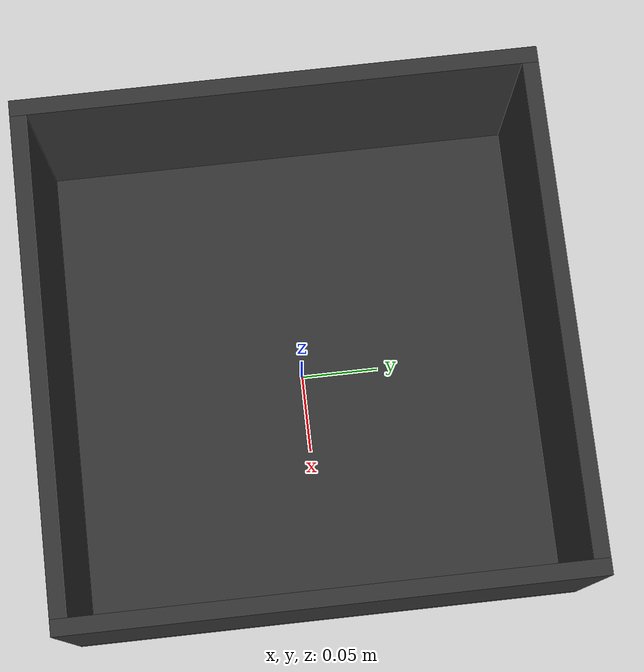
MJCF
<mujoco model="trash_can">
  <worldbody>
    <body>
      <body name="object">
        <inertial pos="0 0 0.075" mass="1000.0" diaginertia="0.005 0.005 0.005"/>
        <site type="box" pos="-0.013524858298834312 0.02301436036437959 0.075" quat="1 0 0 0" size="0.03 0.03 0.065" group="0" rgba="0 0.8 0 0" name="contain_region"/>
        <geom solimp="0.998 0.998 0.001" solref="0.001 1" density="200" friction="0.95 0.3 0.1" group="1" rgba="0.20 0.20 0.20 1" type="box" pos="0 0 0.005" size="0.16 0.16 0.005"/>
        <geom solimp="0.998 0.998 0.001" solref="0.001 1" density="200" friction="0.95 0.3 0.1" group="1" rgba="0.20 0.20 0.20 1" type="box" pos="0 0.155 0.075" size="0.15 0.005 0.065"/>
        <geom solimp="0.998 0.998 0.001" solref="0.001 1" density="200" friction="0.95 0.3 0.1" group="1" rgba="0.20 0.20 0.20 1" type="box" pos="0 -0.155 0.075" size="0.15 0.005 0.065"/>
        <geom solimp="0.998 0.998 0.001" solref="0.001 1" density="200" friction="0.95 0.3 0.1" group="1" rgba="0.20 0.20 0.20 1" type="box" pos="0.155 0 0.075" size="0.005 0.16 0.065"/>
        <geom solimp="0.998 0.998 0.001" solref="0.001 1" density="200" friction="0.95 0.3 0.1" group="1" rgba="0.20 0.20 0.20 1" type="box" pos="-0.155 0 0.075" size="0.005 0.16 0.065"/>
      </body>
      <site rgba="0 0 0 0" size="0.005" pos="0 0 0" name="bottom_site"/>
      <site rgba="0 0 0 0" size="0.005" pos="0 0 0.14" name="top_site"/>
      <site rgba="0 0 0 0" size="0.005" pos="0.15 0.15 0" name="horizontal_radius_site"/>
    </body>
  </worldbody>
</mujoco>
